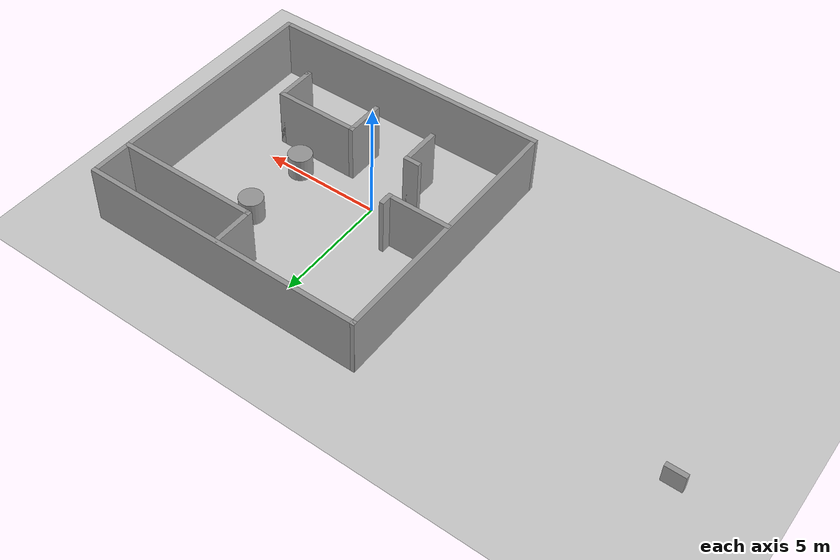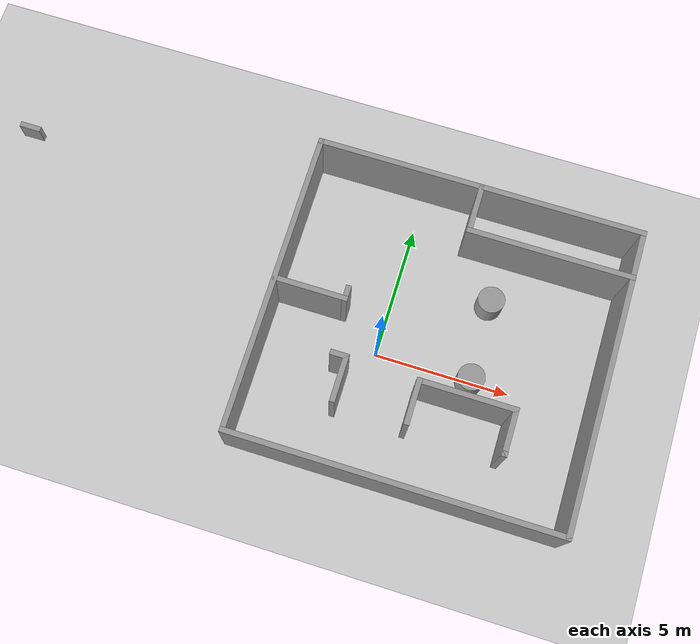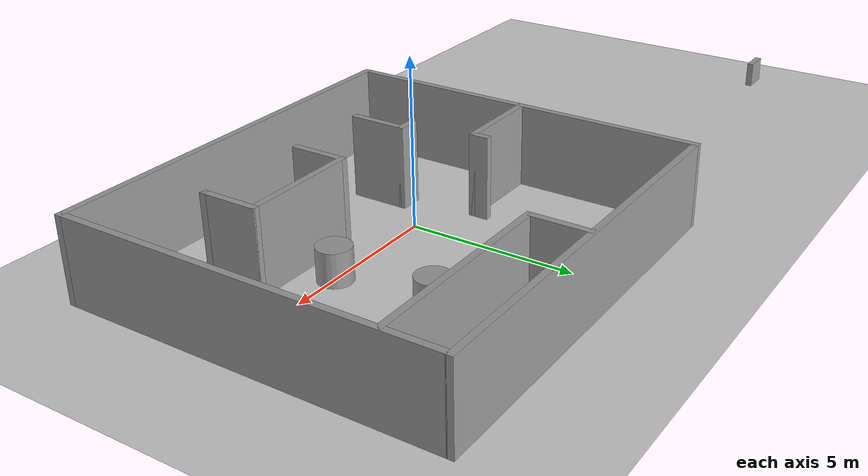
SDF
<sdf version="1.4">
 <world name="default">
  <light name="sun" type="directional">
   <pose>0 0 10 0 -0 0</pose>
   <diffuse>0.8 0.8 0.8 1</diffuse>
   <specular>0.2 0.2 0.2 1</specular>
   <attenuation>
    <range>1000</range>
    <constant>0.9</constant>
    <linear>0.01</linear>
    <quadratic>0.001</quadratic>
   </attenuation>
   <direction>-0.5 0.1 -0.9</direction>
  </light>
  <model name="ground_plane">
   <static>1</static>
   <link name="link">
    <collision name="collision">
     <geometry><plane><normal>0 0 1</normal><size>100 100</size></plane></geometry>
     <surface><friction><ode><mu>100</mu><mu2>50</mu2></ode></friction></surface>
    </collision>
    <visual name="visual">
     <cast_shadows>0</cast_shadows>
     <geometry><plane><normal>0 0 1</normal><size>100 100</size></plane></geometry>
     <material>
      <script><uri>file://media/materials/scripts/gazebo.material</uri><name>Gazebo/Grey</name></script>
     </material>
    </visual>
    <velocity_decay><linear>0</linear><angular>0</angular></velocity_decay>
   </link>
  </model>
  <model name="MRL Arena">
   <link name="Wall_18">
    <collision name="Wall_18_Collision">
     <geometry><box><size>1.87051 0.2 2.5</size></box></geometry>
     <pose>0 0 1.25 0 -0 0</pose>
    </collision>
    <visual name="Wall_18_Visual">
     <pose>0 0 1.25 0 -0 0</pose>
     <geometry><box><size>1.87051 0.2 2.5</size></box></geometry>
     <material>
      <script><uri>file://media/materials/scripts/gazebo.material</uri><name>Gazebo/Grey</name></script>
     </material>
    </visual>
    <velocity_decay><linear>0</linear><angular>0</angular></velocity_decay>
    <pose>1.93872 5.58872 0 0 0 -1.5708</pose>
   </link>
   <link name="Wall_19">
    <collision name="Wall_19_Collision">
     <geometry><box><size>6.14623 0.2 2.5</size></box></geometry>
     <pose>0 0 1.25 0 -0 0</pose>
    </collision>
    <visual name="Wall_19_Visual">
     <pose>0 0 1.25 0 -0 0</pose>
     <geometry><box><size>6.14623 0.2 2.5</size></box></geometry>
     <material>
      <script><uri>file://media/materials/scripts/gazebo.material</uri><name>Gazebo/Grey</name></script>
     </material>
    </visual>
    <velocity_decay><linear>0</linear><angular>0</angular></velocity_decay>
    <pose>4.91184 4.75346 0 0 -0 0</pose>
   </link>
   <link name="Wall_22">
    <collision name="Wall_22_Collision">
     <geometry><box><size>2.74064 0.2 2.5</size></box></geometry>
     <pose>0 0 1.25 0 -0 0</pose>
    </collision>
    <visual name="Wall_22_Visual">
     <pose>0 0 1.25 0 -0 0</pose>
     <geometry><box><size>2.74064 0.2 2.5</size></box></geometry>
     <material>
      <script><uri>file://media/materials/scripts/gazebo.material</uri><name>Gazebo/Grey</name></script>
     </material>
    </visual>
    <velocity_decay><linear>0</linear><angular>0</angular></velocity_decay>
    <pose>-2.80806 0.998144 0 0 -0 0</pose>
   </link>
   <link name="Wall_23">
    <collision name="Wall_23_Collision">
     <geometry><box><size>0.593195 0.2 2.5</size></box></geometry>
     <pose>0 0 1.25 0 -0 0</pose>
    </collision>
    <visual name="Wall_23_Visual">
     <pose>0 0 1.25 0 -0 0</pose>
     <geometry><box><size>0.593195 0.2 2.5</size></box></geometry>
     <material>
      <script><uri>file://media/materials/scripts/gazebo.material</uri><name>Gazebo/Grey</name></script>
     </material>
    </visual>
    <velocity_decay><linear>0</linear><angular>0</angular></velocity_decay>
    <pose>-1.53774 1.19474 0 0 -0 1.5708</pose>
   </link>
   <link name="Wall_29">
    <collision name="Wall_29_Collision">
     <geometry><box><size>0.683932 0.2 2.5</size></box></geometry>
     <pose>0 0 1.25 0 -0 0</pose>
    </collision>
    <visual name="Wall_29_Visual">
     <pose>0 0 1.25 0 -0 0</pose>
     <geometry><box><size>0.683932 0.2 2.5</size></box></geometry>
     <material>
      <script><uri>file://media/materials/scripts/gazebo.material</uri><name>Gazebo/Grey</name></script>
     </material>
    </visual>
    <velocity_decay><linear>0</linear><angular>0</angular></velocity_decay>
    <pose>-1.12223 -0.988024 0 0 -0 0</pose>
   </link>
   <link name="Wall_3">
    <collision name="Wall_3_Collision">
     <geometry><box><size>11.19 0.2 2.5</size></box></geometry>
     <pose>0 0 1.25 0 -0 0</pose>
    </collision>
    <visual name="Wall_3_Visual">
     <pose>0 0 1.25 0 -0 0</pose>
     <geometry><box><size>11.19 0.2 2.5</size></box></geometry>
     <material>
      <script><uri>file://media/materials/scripts/gazebo.material</uri><name>Gazebo/Grey</name></script>
     </material>
    </visual>
    <velocity_decay><linear>0</linear><angular>0</angular></velocity_decay>
    <pose>7.89 0.825009 0 0 0 -1.5708</pose>
   </link>
   <link name="Wall_30">
    <collision name="Wall_30_Collision">
     <geometry><box><size>1.77523 0.2 2.5</size></box></geometry>
     <pose>0 0 1.25 0 -0 0</pose>
    </collision>
    <visual name="Wall_30_Visual">
     <pose>0 0 1.25 0 -0 0</pose>
     <geometry><box><size>1.77523 0.2 2.5</size></box></geometry>
     <material>
      <script><uri>file://media/materials/scripts/gazebo.material</uri><name>Gazebo/Grey</name></script>
     </material>
    </visual>
    <velocity_decay><linear>0</linear><angular>0</angular></velocity_decay>
    <pose>-0.880265 -1.77564 0 0 0 -1.5708</pose>
   </link>
   <link name="Wall_32">
    <collision name="Wall_32_Collision">
     <geometry><box><size>1.71229 0.2 2.5</size></box></geometry>
     <pose>0 0 1.25 0 -0 0</pose>
    </collision>
    <visual name="Wall_32_Visual">
     <pose>0 0 1.25 0 -0 0</pose>
     <geometry><box><size>1.71229 0.2 2.5</size></box></geometry>
     <material>
      <script><uri>file://media/materials/scripts/gazebo.material</uri><name>Gazebo/Grey</name></script>
     </material>
    </visual>
    <velocity_decay><linear>0</linear><angular>0</angular></velocity_decay>
    <pose>1.75111 -1.80466 0 0 -0 1.5708</pose>
   </link>
   <link name="Wall_33">
    <collision name="Wall_33_Collision">
     <geometry><box><size>3.61777 0.2 2.5</size></box></geometry>
     <pose>0 0 1.25 0 -0 0</pose>
    </collision>
    <visual name="Wall_33_Visual">
     <pose>0 0 1.25 0 -0 0</pose>
     <geometry><box><size>3.61777 0.2 2.5</size></box></geometry>
     <material>
      <script><uri>file://media/materials/scripts/gazebo.material</uri><name>Gazebo/Grey</name></script>
     </material>
    </visual>
    <velocity_decay><linear>0</linear><angular>0</angular></velocity_decay>
    <pose>3.46 -1.04852 0 0 -0 0</pose>
   </link>
   <link name="Wall_34">
    <collision name="Wall_34_Collision">
     <geometry><box><size>1.77278 0.2 2.5</size></box></geometry>
     <pose>0 0 1.25 0 -0 0</pose>
    </collision>
    <visual name="Wall_34_Visual">
     <pose>0 0 1.25 0 -0 0</pose>
     <geometry><box><size>1.77278 0.2 2.5</size></box></geometry>
     <material>
      <script><uri>file://media/materials/scripts/gazebo.material</uri><name>Gazebo/Grey</name></script>
     </material>
    </visual>
    <velocity_decay><linear>0</linear><angular>0</angular></velocity_decay>
    <pose>5.16889 -1.83491 0 0 0 -1.5708</pose>
   </link>
   <link name="Wall_35">
    <collision name="Wall_35_Collision">
     <geometry><box><size>0.21 0.2 2.5</size></box></geometry>
     <pose>0 0 1.25 0 -0 0</pose>
    </collision>
    <visual name="Wall_35_Visual">
     <pose>0 0 1.25 0 -0 0</pose>
     <geometry><box><size>0.21 0.2 2.5</size></box></geometry>
     <material>
      <script><uri>file://media/materials/scripts/gazebo.material</uri><name>Gazebo/Grey</name></script>
     </material>
    </visual>
    <velocity_decay><linear>0</linear><angular>0</angular></velocity_decay>
    <pose>5.17389 -2.62129 0 0 -0 0</pose>
   </link>
   <link name="Wall_4">
    <collision name="Wall_4_Collision">
     <geometry><box><size>12.2197 0.2 2.5</size></box></geometry>
     <pose>0 0 1.25 0 -0 0</pose>
    </collision>
    <visual name="Wall_4_Visual">
     <pose>0 0 1.25 0 -0 0</pose>
     <geometry><box><size>12.2197 0.2 2.5</size></box></geometry>
     <material>
      <script><uri>file://media/materials/scripts/gazebo.material</uri><name>Gazebo/Grey</name></script>
     </material>
    </visual>
    <velocity_decay><linear>0</linear><angular>0</angular></velocity_decay>
    <pose>1.88016 -4.67 0 0 -0 3.14159</pose>
   </link>
   <link name="Wall_6">
    <collision name="Wall_6_Collision">
     <geometry><box><size>11.1573 0.2 2.5</size></box></geometry>
     <pose>0 0 1.25 0 -0 0</pose>
    </collision>
    <visual name="Wall_6_Visual">
     <pose>0 0 1.25 0 -0 0</pose>
     <geometry><box><size>11.1573 0.2 2.5</size></box></geometry>
     <material>
      <script><uri>file://media/materials/scripts/gazebo.material</uri><name>Gazebo/Grey</name></script>
     </material>
    </visual>
    <velocity_decay><linear>0</linear><angular>0</angular></velocity_decay>
    <pose>-4.13 1.00831 0 0 -0 1.5708</pose>
   </link>
   <link name="Wall_7">
    <collision name="Wall_7_Collision">
     <geometry><box><size>12.22 0.2 2.5</size></box></geometry>
     <pose>0 0 1.25 0 -0 0</pose>
    </collision>
    <visual name="Wall_7_Visual">
     <pose>0 0 1.25 0 -0 0</pose>
     <geometry><box><size>12.22 0.2 2.5</size></box></geometry>
     <material>
      <script><uri>file://media/materials/scripts/gazebo.material</uri><name>Gazebo/Grey</name></script>
     </material>
    </visual>
    <velocity_decay><linear>0</linear><angular>0</angular></velocity_decay>
    <pose>1.88 6.48847 0 0 -0 0.000254</pose>
   </link>
   <link name="Window_0">
    <collision name="Window_0_Collision">
     <geometry><box><size>0.8 0.2 0.8</size></box></geometry>
     <pose>0 0 0.4 0 -0 0</pose>
    </collision>
    <visual name="Window_0_Visual">
     <pose>0 0 0.4 0 -0 0</pose>
     <geometry><box><size>0.8 0.2 0.8</size></box></geometry>
     <material>
      <script><uri>file://media/materials/scripts/gazebo.material</uri><name>Gazebo/Grey</name></script>
     </material>
    </visual>
    <velocity_decay><linear>0</linear><angular>0</angular></velocity_decay>
    <pose>-14.9852 4.31594 0.5 0 -0 0</pose>
   </link>
   <static>1</static>
  </model>
  <physics type="ode">
   <max_step_size>0.001</max_step_size>
   <real_time_factor>1</real_time_factor>
   <real_time_update_rate>1000</real_time_update_rate>
   <gravity>0 0 -9.8</gravity>
  </physics>
  <scene><ambient>0.4 0.4 0.4 1</ambient><background>0.7 0.7 0.7 1</background><shadows>1</shadows></scene>
  <spherical_coordinates>
   <surface_model>EARTH_WGS84</surface_model>
   <latitude_deg>0</latitude_deg>
   <longitude_deg>0</longitude_deg>
   <elevation>0</elevation>
   <heading_deg>0</heading_deg>
  </spherical_coordinates>
  <model name="unit_cylinder_1">
   <pose>3.51244 -0 0.499998 0 -0 0</pose>
   <link name="link">
    <inertial>
     <mass>1</mass>
     <inertia><ixx>1</ixx><ixy>0</ixy><ixz>0</ixz><iyy>1</iyy><iyz>0</iyz><izz>1</izz></inertia>
    </inertial>
    <collision name="collision">
     <geometry><cylinder><radius>0.5</radius><length>1</length></cylinder></geometry>
    </collision>
    <visual name="visual">
     <geometry><cylinder><radius>0.5</radius><length>1</length></cylinder></geometry>
     <material>
      <script><uri>file://media/materials/scripts/gazebo.material</uri><name>Gazebo/Grey</name></script>
     </material>
    </visual>
    <velocity_decay><linear>0</linear><angular>0</angular></velocity_decay>
   </link>
   <static>0</static>
  </model>
  <model name="unit_cylinder_2">
   <pose>3.45067 3 0.499992 0 -0 0</pose>
   <link name="link">
    <inertial>
     <mass>1</mass>
     <inertia><ixx>1</ixx><ixy>0</ixy><ixz>0</ixz><iyy>1</iyy><iyz>0</iyz><izz>1</izz></inertia>
    </inertial>
    <collision name="collision">
     <geometry><cylinder><radius>0.5</radius><length>1</length></cylinder></geometry>
    </collision>
    <visual name="visual">
     <geometry><cylinder><radius>0.5</radius><length>1</length></cylinder></geometry>
     <material>
      <script><uri>file://media/materials/scripts/gazebo.material</uri><name>Gazebo/Grey</name></script>
     </material>
    </visual>
    <velocity_decay><linear>0</linear><angular>0</angular></velocity_decay>
   </link>
   <static>0</static>
  </model>
 </world>
</sdf>
